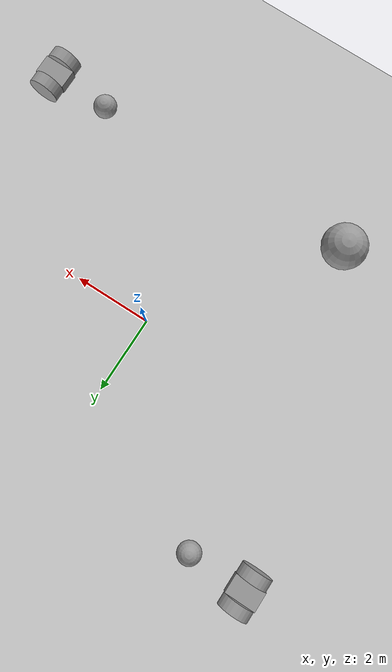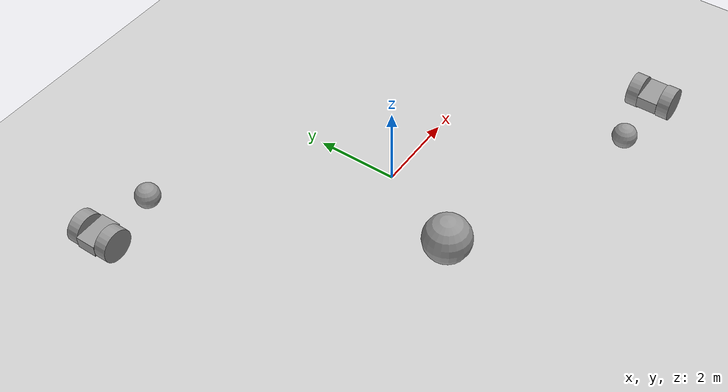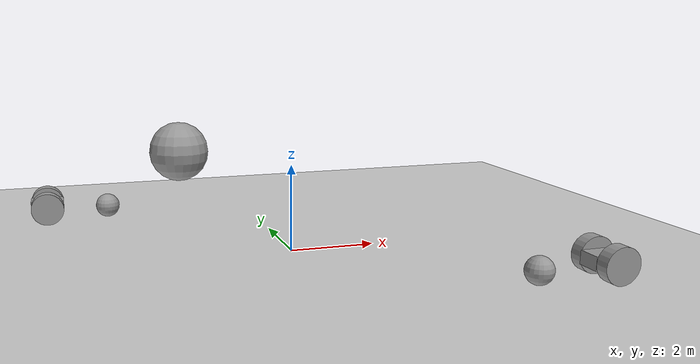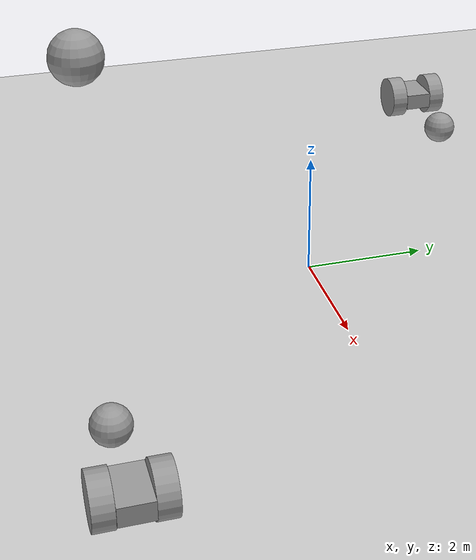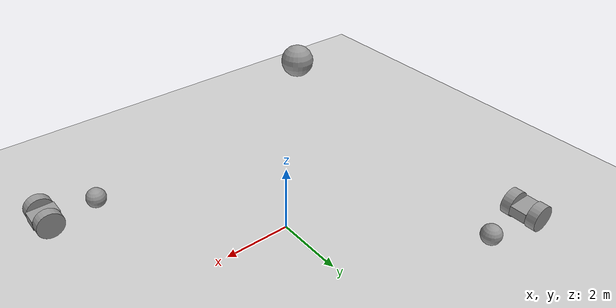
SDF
<sdf version="1.6">
 <world name="default">
  <plugin name="welcome" filename="libwelcome.so"/>
  <include><uri>model://spheric_horse</uri><name>carriage1</name><pose>-5 4 0.5 0 0 0</pose></include>
  <include><uri>model://spheric_horse</uri><name>carriage2</name><pose>5 -4 0.5 0 0 3.1416</pose></include>
  <model name="unit_sphere">
   <pose>-3 -3.3 3 0 0 0</pose>
   <link name="link">
    <inertial>
     <mass>1</mass>
     <inertia><ixx>0.1</ixx><ixy>0</ixy><ixz>0</ixz><iyy>0.1</iyy><iyz>0</iyz><izz>0.1</izz></inertia>
    </inertial>
    <collision name="collision"><geometry><sphere><radius>0.5</radius></sphere></geometry></collision>
    <visual name="visual">
     <geometry><sphere><radius>0.5</radius></sphere></geometry>
     <material>
      <script><name>Gazebo/Grey</name><uri>file://media/materials/scripts/gazebo.material</uri></script>
     </material>
    </visual>
   </link>
   <plugin name="back_and_forth" filename="libback_and_forth.so">
    <link>link</link>
    <starting_position>-3 -3.3 3</starting_position>
    <ending_position>3.5 3.25 3</ending_position>
    <speed>2</speed>
   </plugin>
  </model>
  <light name="sun" type="directional">
   <pose>0 0 10 0 -0 0</pose>
   <diffuse>0.8 0.8 0.8 1</diffuse>
   <specular>0.2 0.2 0.2 1</specular>
   <attenuation>
    <range>1000</range>
    <constant>0.9</constant>
    <linear>0.01</linear>
    <quadratic>0.001</quadratic>
   </attenuation>
   <direction>-0.5 0.1 -0.9</direction>
  </light>
  <model name="ground_plane">
   <static>1</static>
   <link name="link">
    <collision name="collision">
     <geometry><plane><normal>0 0 1</normal><size>100 100</size></plane></geometry>
     <surface>
      <contact><collide_bitmask>65535</collide_bitmask></contact>
      <friction><ode><mu>100</mu><mu2>50</mu2></ode></friction>
     </surface>
    </collision>
    <visual name="visual">
     <cast_shadows>0</cast_shadows>
     <geometry><plane><normal>0 0 1</normal><size>100 100</size></plane></geometry>
     <material>
      <script><uri>file://media/materials/scripts/gazebo.material</uri><name>Gazebo/Grey</name></script>
     </material>
    </visual>
   </link>
  </model>
  <gravity>0 0 -9.8</gravity>
  <magnetic_field>6e-06 2.3e-05 -4.2e-05</magnetic_field>
  <atmosphere type="adiabatic"/>
  <physics name="default_physics" default="0" type="ode">
   <max_step_size>0.001</max_step_size>
   <real_time_factor>1</real_time_factor>
   <real_time_update_rate>1000</real_time_update_rate>
  </physics>
  <scene><ambient>0.4 0.4 0.4 1</ambient><background>0.7 0.7 0.7 1</background><shadows>1</shadows></scene>
  <audio><device>default</device></audio>
  <spherical_coordinates>
   <surface_model>EARTH_WGS84</surface_model>
   <latitude_deg>0</latitude_deg>
   <longitude_deg>0</longitude_deg>
   <elevation>0</elevation>
   <heading_deg>0</heading_deg>
  </spherical_coordinates>
 </world>
</sdf>

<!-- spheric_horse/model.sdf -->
<sdf version='1.6'>
  <model name='spheric_horse'>
    <link name='link_0'>
      <inertial>
        <mass>1</mass>
        <inertia>
          <ixx>0.166667</ixx>
          <ixy>0</ixy>
          <ixz>0</ixz>
          <iyy>0.166667</iyy>
          <iyz>0</iyz>
          <izz>0.166667</izz>
        </inertia>
        <pose frame=''>0 0 0 0 -0 0</pose>
      </inertial>
      <pose frame=''>-0.377703 -0 0.025 0 -0 0</pose>
      <gravity>1</gravity>
      <self_collide>0</self_collide>
      <kinematic>0</kinematic>
      <enable_wind>0</enable_wind>
      <visual name='visual'>
        <pose frame=''>0 0 0 0 -0 0</pose>
        <geometry>
          <box>
            <size>0.8 0.5 0.3</size>
          </box>
        </geometry>
        <material>
          <lighting>1</lighting>
          <script>
            <uri>file://media/materials/scripts/gazebo.material</uri>
            <name>Gazebo/Grey</name>
          </script>
          <shader type='vertex'>
            <normal_map>__default__</normal_map>
          </shader>
          <ambient>0.3 0.3 0.3 1</ambient>
          <diffuse>0.7 0.7 0.7 1</diffuse>
          <specular>0.01 0.01 0.01 1</specular>
          <emissive>0 0 0 1</emissive>
        </material>
        <transparency>0</transparency>
        <cast_shadows>1</cast_shadows>
      </visual>
      <collision name='collision'>
        <laser_retro>0</laser_retro>
        <max_contacts>10</max_contacts>
        <pose frame=''>0 0 0 0 -0 0</pose>
        <geometry>
          <box>
            <size>0.8 0.5 0.3</size>
          </box>
        </geometry>
        <surface>
          <friction>
            <ode>
              <mu>1</mu>
              <mu2>1</mu2>
              <fdir1>0 0 0</fdir1>
              <slip1>0</slip1>
              <slip2>0</slip2>
            </ode>
            <torsional>
              <coefficient>1</coefficient>
              <patch_radius>0</patch_radius>
              <surface_radius>0</surface_radius>
              <use_patch_radius>1</use_patch_radius>
              <ode>
                <slip>0</slip>
              </ode>
            </torsional>
          </friction>
          <bounce>
            <restitution_coefficient>0</restitution_coefficient>
            <threshold>1e+06</threshold>
          </bounce>
          <contact>
            <collide_without_contact>0</collide_without_contact>
            <collide_without_contact_bitmask>1</collide_without_contact_bitmask>
            <collide_bitmask>1</collide_bitmask>
            <ode>
              <soft_cfm>0</soft_cfm>
              <soft_erp>0.2</soft_erp>
              <kp>1e+13</kp>
              <kd>1</kd>
              <max_vel>0.01</max_vel>
              <min_depth>0</min_depth>
            </ode>
            <bullet>
              <split_impulse>1</split_impulse>
              <split_impulse_penetration_threshold>-0.01</split_impulse_penetration_threshold>
              <soft_cfm>0</soft_cfm>
              <soft_erp>0.2</soft_erp>
              <kp>1e+13</kp>
              <kd>1</kd>
            </bullet>
          </contact>
        </surface>
      </collision>
    </link>
    <link name='link_1'>
      <inertial>
        <mass>1</mass>
        <inertia>
          <ixx>0.145833</ixx>
          <ixy>0</ixy>
          <ixz>0</ixz>
          <iyy>0.145833</iyy>
          <iyz>0</iyz>
          <izz>0.125</izz>
        </inertia>
        <pose frame=''>0 0 0 0 -0 0</pose>
      </inertial>
      <pose frame=''>-0.377703 -0.400039 0.025 1.5707 -0 0</pose>
      <gravity>1</gravity>
      <self_collide>0</self_collide>
      <kinematic>0</kinematic>
      <enable_wind>0</enable_wind>
      <visual name='visual'>
        <pose frame=''>0 0 0 0 -0 0</pose>
        <geometry>
          <cylinder>
            <radius>0.4</radius>
            <length>0.3</length>
          </cylinder>
        </geometry>
        <material>
          <lighting>1</lighting>
          <script>
            <uri>file://media/materials/scripts/gazebo.material</uri>
            <name>Gazebo/Grey</name>
          </script>
          <shader type='vertex'>
            <normal_map>__default__</normal_map>
          </shader>
          <ambient>0.3 0.3 0.3 1</ambient>
          <diffuse>0.7 0.7 0.7 1</diffuse>
          <specular>0.01 0.01 0.01 1</specular>
          <emissive>0 0 0 1</emissive>
        </material>
        <transparency>0</transparency>
        <cast_shadows>1</cast_shadows>
      </visual>
      <collision name='collision'>
        <laser_retro>0</laser_retro>
        <max_contacts>10</max_contacts>
        <pose frame=''>0 0 0 0 -0 0</pose>
        <geometry>
          <cylinder>
            <radius>0.4</radius>
            <length>0.3</length>
          </cylinder>
        </geometry>
        <surface>
          <friction>
            <ode>
              <mu>1</mu>
              <mu2>1</mu2>
              <fdir1>0 0 0</fdir1>
              <slip1>0</slip1>
              <slip2>0</slip2>
            </ode>
            <torsional>
              <coefficient>1</coefficient>
              <patch_radius>0</patch_radius>
              <surface_radius>0</surface_radius>
              <use_patch_radius>1</use_patch_radius>
              <ode>
                <slip>0</slip>
              </ode>
            </torsional>
          </friction>
          <bounce>
            <restitution_coefficient>0</restitution_coefficient>
            <threshold>1e+06</threshold>
          </bounce>
          <contact>
            <collide_without_contact>0</collide_without_contact>
            <collide_without_contact_bitmask>1</collide_without_contact_bitmask>
            <collide_bitmask>1</collide_bitmask>
            <ode>
              <soft_cfm>0</soft_cfm>
              <soft_erp>0.2</soft_erp>
              <kp>1e+13</kp>
              <kd>1</kd>
              <max_vel>0.01</max_vel>
              <min_depth>0</min_depth>
            </ode>
            <bullet>
              <split_impulse>1</split_impulse>
              <split_impulse_penetration_threshold>-0.01</split_impulse_penetration_threshold>
              <soft_cfm>0</soft_cfm>
              <soft_erp>0.2</soft_erp>
              <kp>1e+13</kp>
              <kd>1</kd>
            </bullet>
          </contact>
        </surface>
      </collision>
    </link>
    <link name='link_1_clone'>
      <inertial>
        <mass>1</mass>
        <inertia>
          <ixx>0.145833</ixx>
          <ixy>0</ixy>
          <ixz>0</ixz>
          <iyy>0.145833</iyy>
          <iyz>0</iyz>
          <izz>0.125</izz>
        </inertia>
        <pose frame=''>0 0 0 0 -0 0</pose>
      </inertial>
      <pose frame=''>-0.377703 0.400038 0.025 1.5707 -0 0</pose>
      <gravity>1</gravity>
      <self_collide>0</self_collide>
      <kinematic>0</kinematic>
      <enable_wind>0</enable_wind>
      <visual name='visual'>
        <pose frame=''>0 0 0 0 -0 0</pose>
        <geometry>
          <cylinder>
            <radius>0.4</radius>
            <length>0.3</length>
          </cylinder>
        </geometry>
        <material>
          <lighting>1</lighting>
          <script>
            <uri>file://media/materials/scripts/gazebo.material</uri>
            <name>Gazebo/Grey</name>
          </script>
          <shader type='vertex'>
            <normal_map>__default__</normal_map>
          </shader>
          <ambient>0.3 0.3 0.3 1</ambient>
          <diffuse>0.7 0.7 0.7 1</diffuse>
          <specular>0.01 0.01 0.01 1</specular>
          <emissive>0 0 0 1</emissive>
        </material>
        <transparency>0</transparency>
        <cast_shadows>1</cast_shadows>
      </visual>
      <collision name='collision'>
        <laser_retro>0</laser_retro>
        <max_contacts>10</max_contacts>
        <pose frame=''>0 0 0 0 -0 0</pose>
        <geometry>
          <cylinder>
            <radius>0.4</radius>
            <length>0.3</length>
          </cylinder>
        </geometry>
        <surface>
          <friction>
            <ode>
              <mu>1</mu>
              <mu2>1</mu2>
              <fdir1>0 0 0</fdir1>
              <slip1>0</slip1>
              <slip2>0</slip2>
            </ode>
            <torsional>
              <coefficient>1</coefficient>
              <patch_radius>0</patch_radius>
              <surface_radius>0</surface_radius>
              <use_patch_radius>1</use_patch_radius>
              <ode>
                <slip>0</slip>
              </ode>
            </torsional>
          </friction>
          <bounce>
            <restitution_coefficient>0</restitution_coefficient>
            <threshold>1e+06</threshold>
          </bounce>
          <contact>
            <collide_without_contact>0</collide_without_contact>
            <collide_without_contact_bitmask>1</collide_without_contact_bitmask>
            <collide_bitmask>1</collide_bitmask>
            <ode>
              <soft_cfm>0</soft_cfm>
              <soft_erp>0.2</soft_erp>
              <kp>1e+13</kp>
              <kd>1</kd>
              <max_vel>0.01</max_vel>
              <min_depth>0</min_depth>
            </ode>
            <bullet>
              <split_impulse>1</split_impulse>
              <split_impulse_penetration_threshold>-0.01</split_impulse_penetration_threshold>
              <soft_cfm>0</soft_cfm>
              <soft_erp>0.2</soft_erp>
              <kp>1e+13</kp>
              <kd>1</kd>
            </bullet>
          </contact>
        </surface>
      </collision>
    </link>
    <link name='link_2'>
      <inertial>
        <mass>1</mass>
        <inertia>
          <ixx>0.1</ixx>
          <ixy>0</ixy>
          <ixz>0</ixz>
          <iyy>0.1</iyy>
          <iyz>0</iyz>
          <izz>0.1</izz>
        </inertia>
        <pose frame=''>0 0 0 0 -0 0</pose>
      </inertial>
      <pose frame=''>1.13311 -0 -0.075 0 -0 0</pose>
      <gravity>1</gravity>
      <self_collide>0</self_collide>
      <kinematic>0</kinematic>
      <enable_wind>0</enable_wind>
      <visual name='visual'>
        <pose frame=''>0 0 0 0 -0 0</pose>
        <geometry>
          <sphere>
            <radius>0.3</radius>
          </sphere>
        </geometry>
        <material>
          <lighting>1</lighting>
          <script>
            <uri>file://media/materials/scripts/gazebo.material</uri>
            <name>Gazebo/Grey</name>
          </script>
          <shader type='vertex'>
            <normal_map>__default__</normal_map>
          </shader>
          <ambient>0.3 0.3 0.3 1</ambient>
          <diffuse>0.7 0.7 0.7 1</diffuse>
          <specular>0.01 0.01 0.01 1</specular>
          <emissive>0 0 0 1</emissive>
        </material>
        <transparency>0</transparency>
        <cast_shadows>1</cast_shadows>
      </visual>
      <collision name='collision'>
        <laser_retro>0</laser_retro>
        <max_contacts>10</max_contacts>
        <pose frame=''>0 0 0 0 -0 0</pose>
        <geometry>
          <sphere>
            <radius>0.3</radius>
          </sphere>
        </geometry>
        <surface>
          <friction>
            <ode>
              <mu>1</mu>
              <mu2>1</mu2>
              <fdir1>0 0 0</fdir1>
              <slip1>0</slip1>
              <slip2>0</slip2>
            </ode>
            <torsional>
              <coefficient>1</coefficient>
              <patch_radius>0</patch_radius>
              <surface_radius>0</surface_radius>
              <use_patch_radius>1</use_patch_radius>
              <ode>
                <slip>0</slip>
              </ode>
            </torsional>
          </friction>
          <bounce>
            <restitution_coefficient>0</restitution_coefficient>
            <threshold>1e+06</threshold>
          </bounce>
          <contact>
            <collide_without_contact>0</collide_without_contact>
            <collide_without_contact_bitmask>1</collide_without_contact_bitmask>
            <collide_bitmask>1</collide_bitmask>
            <ode>
              <soft_cfm>0</soft_cfm>
              <soft_erp>0.2</soft_erp>
              <kp>1e+13</kp>
              <kd>1</kd>
              <max_vel>0.01</max_vel>
              <min_depth>0</min_depth>
            </ode>
            <bullet>
              <split_impulse>1</split_impulse>
              <split_impulse_penetration_threshold>-0.01</split_impulse_penetration_threshold>
              <soft_cfm>0</soft_cfm>
              <soft_erp>0.2</soft_erp>
              <kp>1e+13</kp>
              <kd>1</kd>
            </bullet>
          </contact>
        </surface>
      </collision>
    </link>
    <joint name='link_0_JOINT_0' type='revolute'>
      <parent>link_0</parent>
      <child>link_1</child>
      <pose frame=''>0 0 0 0 -0 0</pose>
      <axis>
        <xyz>0 0 1</xyz>
        <use_parent_model_frame>0</use_parent_model_frame>
        <limit>
          <lower>-1.79769e+308</lower>
          <upper>1.79769e+308</upper>
          <effort>-1</effort>
          <velocity>-1</velocity>
        </limit>
        <dynamics>
          <spring_reference>0</spring_reference>
          <spring_stiffness>0</spring_stiffness>
          <damping>0</damping>
        </dynamics>
      </axis>
      <physics>
        <ode>
          <limit>
            <cfm>0</cfm>
            <erp>0.2</erp>
          </limit>
          <suspension>
            <cfm>0</cfm>
            <erp>0.2</erp>
          </suspension>
        </ode>
      </physics>
    </joint>
    <joint name='link_0_JOINT_1' type='revolute'>
      <parent>link_0</parent>
      <child>link_1_clone</child>
      <pose frame=''>0 0 0 0 -0 0</pose>
      <axis>
        <xyz>0 0 1</xyz>
        <use_parent_model_frame>0</use_parent_model_frame>
        <limit>
          <lower>-1.79769e+308</lower>
          <upper>1.79769e+308</upper>
          <effort>-1</effort>
          <velocity>-1</velocity>
        </limit>
        <dynamics>
          <spring_reference>0</spring_reference>
          <spring_stiffness>0</spring_stiffness>
          <damping>0</damping>
        </dynamics>
      </axis>
      <physics>
        <ode>
          <limit>
            <cfm>0</cfm>
            <erp>0.2</erp>
          </limit>
          <suspension>
            <cfm>0</cfm>
            <erp>0.2</erp>
          </suspension>
        </ode>
      </physics>
    </joint>
    <joint name='link_0_JOINT_2' type='ball'>
      <parent>link_0</parent>
      <child>link_2</child>
      <pose frame=''>0 0 0 0 -0 0</pose>
      <physics>
        <ode>
          <limit>
            <cfm>0</cfm>
            <erp>0.2</erp>
          </limit>
          <suspension>
            <cfm>0</cfm>
            <erp>0.2</erp>
          </suspension>
        </ode>
      </physics>
    </joint>
    <static>0</static>
    <allow_auto_disable>1</allow_auto_disable>
  </model>
</sdf>
